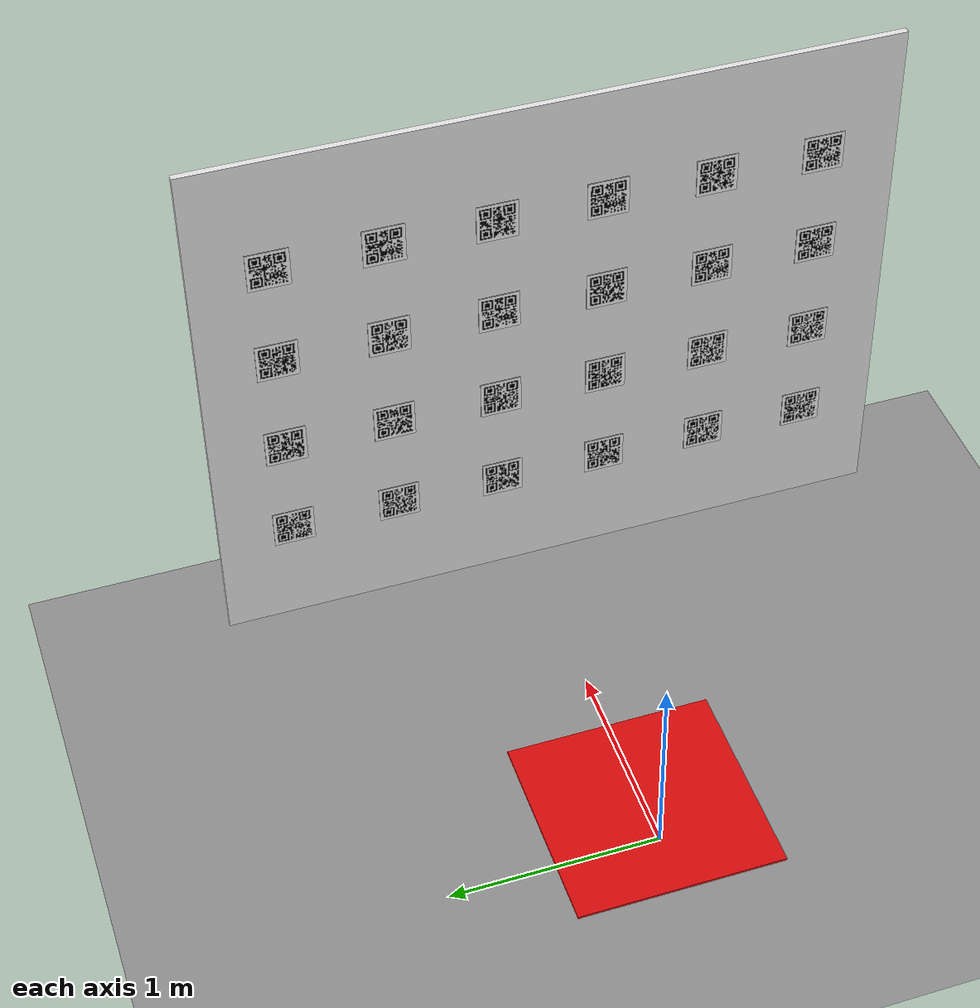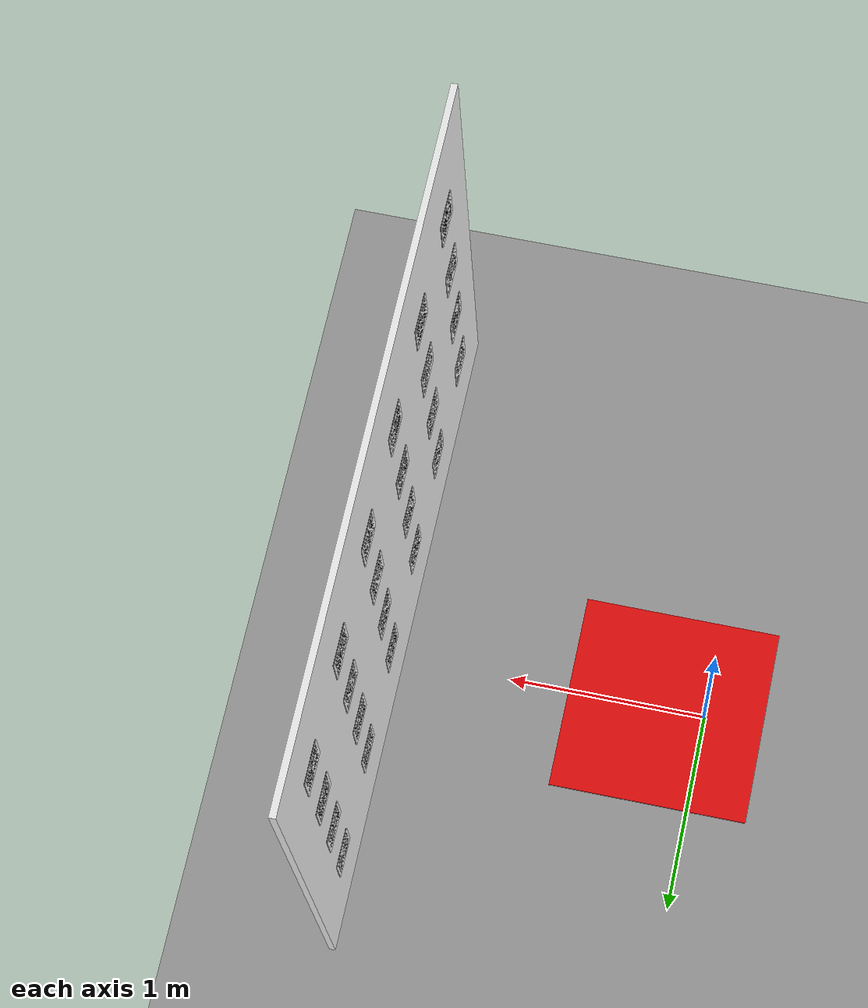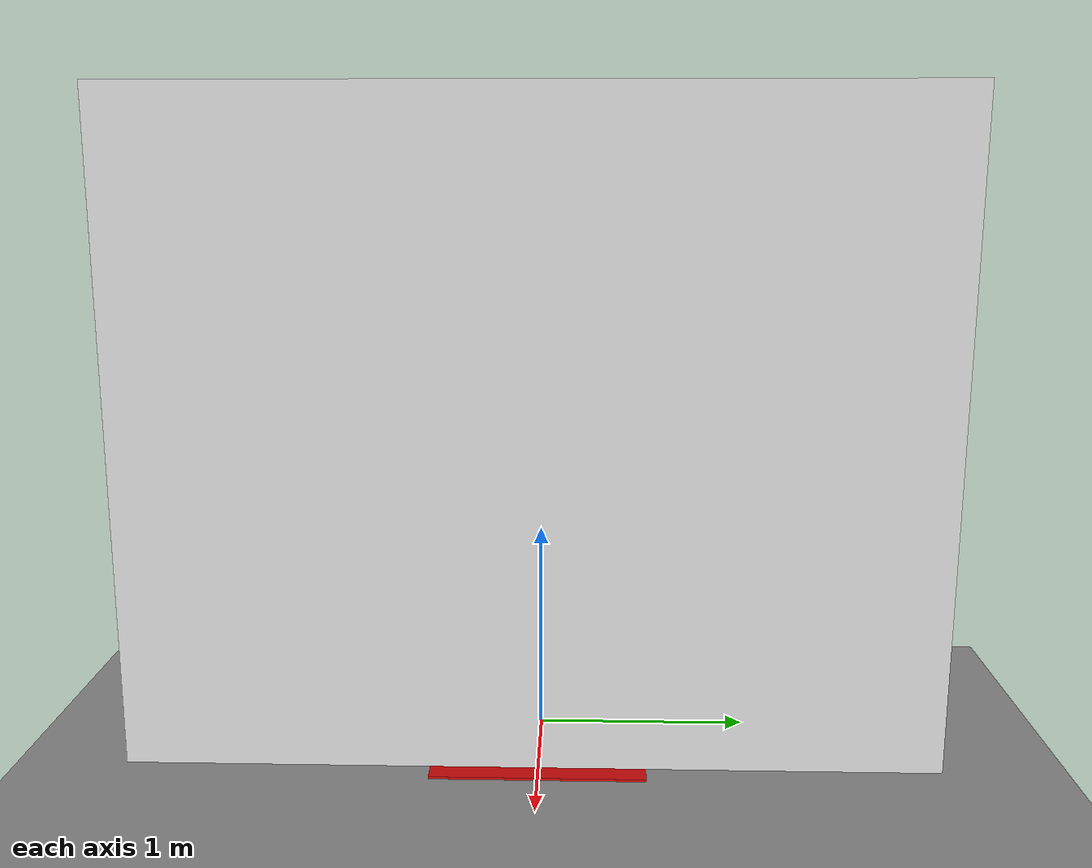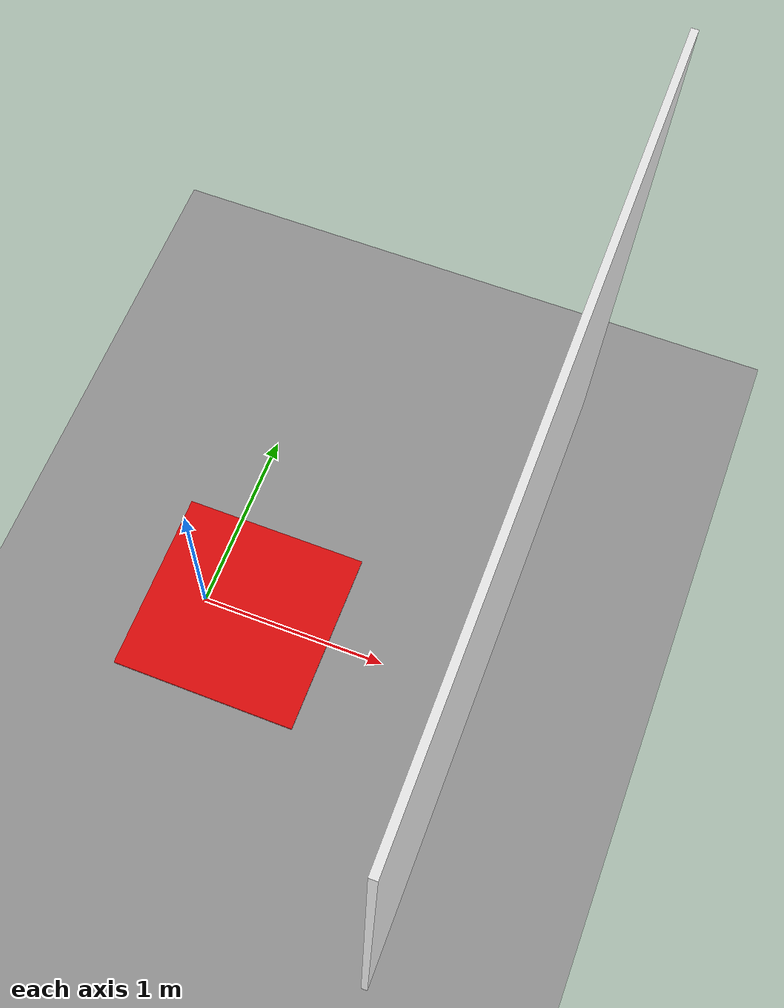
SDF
<?xml version="1.0"?>
<sdf version="1.9"><world name="qr_shelf_world">
  <physics type="ode"><max_step_size>0.004</max_step_size>
    <real_time_factor>1</real_time_factor></physics>
  <gravity>0 0 -9.8</gravity>
  <magnetic_field>6e-06 2.3e-05 -4.2e-05</magnetic_field>
  <atmosphere type="adiabatic"/>
  <scene><ambient>0.55 0.55 0.55 1</ambient>
    <background>0.75 0.75 0.75 1</background><shadows>true</shadows></scene>
  <model name="ground"><static>true</static><link name="link">
    <collision name="collision"><geometry><plane><normal>0 0 1</normal>
      <size>100 100</size></plane></geometry></collision>
    <visual name="visual"><geometry><plane><normal>0 0 1</normal>
      <size>100 100</size></plane></geometry><material>
      <diffuse>0.6 0.6 0.6 1</diffuse></material></visual></link></model>
  <include><uri>model://qr_shelf</uri><pose>1.5 0 0.25 0 0 0</pose></include>
  <model name="landing_pad"><static>true</static><pose>0.2 0 0.006 0 0 0</pose>
    <link name="link"><visual name="pad"><geometry>
      <box><size>1.0 1.0 0.012</size></box>
      </geometry><material><diffuse>0.9 0.05 0.05 1</diffuse>
      </material></visual></link></model>
  <model name="shelf_validation_camera"><static>true</static>
    <pose>-0.5 0 2.0 0 0 0</pose><link name="link">
      <sensor name="camera" type="camera">
        <topic>/camera/shelf_validation/image</topic>
        <camera><horizontal_fov>1.0471975512</horizontal_fov>
          <image><width>640</width><height>480</height>
            <format>R8G8B8</format></image>
          <clip><near>0.05</near><far>10</far></clip></camera>
        <always_on>true</always_on><update_rate>5</update_rate>
      </sensor>
    </link>
  </model>
  <light name="sun" type="directional"><pose>0 0 10 0 0 0</pose>
    <cast_shadows>true</cast_shadows><intensity>1</intensity>
    <direction>-0.3 0.2 -0.9</direction></light>
  <spherical_coordinates>
    <surface_model>EARTH_WGS84</surface_model>
    <world_frame_orientation>ENU</world_frame_orientation>
    <latitude_deg>47.397971057728974</latitude_deg>
    <longitude_deg>8.546163739800146</longitude_deg>
    <elevation>0</elevation>
  </spherical_coordinates>
</world></sdf>

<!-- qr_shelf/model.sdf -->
<sdf version="1.9"><model name="qr_shelf"><static>true</static>
  <link name="shelf">
    <visual name="white_back"><pose>0.015 0 1.5 0 0 0</pose>
      <geometry><box><size>0.03 3.2 2.6</size></box></geometry>
      <material><diffuse>0.95 0.95 0.95 1</diffuse></material></visual>
    <collision name="back_collision"><pose>0.03 0 1.5 0 0 0</pose>
      <geometry><box><size>0.06 3.2 2.6</size></box></geometry></collision>

        <visual name="qr_01_black">
          <pose>-0.002 -1.25 2.25 0 0 0</pose>
          <geometry><box><size>0.004 0.19 0.19</size></box></geometry>
          <material><ambient>0 0 0 1</ambient><diffuse>0 0 0 1</diffuse>
          <specular>0 0 0 1</specular></material>
        </visual>
        <visual name="qr_01_modules">
          <pose>-0.005 -1.25 2.25 0 0 0</pose>
          <geometry><mesh><uri>meshes/qr_01.dae</uri></mesh></geometry>
          <material><ambient>1 1 1 1</ambient><diffuse>1 1 1 1</diffuse>
          <specular>0 0 0 1</specular></material>
        </visual>
        <visual name="qr_02_black">
          <pose>-0.002 -0.75 2.25 0 0 0</pose>
          <geometry><box><size>0.004 0.19 0.19</size></box></geometry>
          <material><ambient>0 0 0 1</ambient><diffuse>0 0 0 1</diffuse>
          <specular>0 0 0 1</specular></material>
        </visual>
        <visual name="qr_02_modules">
          <pose>-0.005 -0.75 2.25 0 0 0</pose>
          <geometry><mesh><uri>meshes/qr_02.dae</uri></mesh></geometry>
          <material><ambient>1 1 1 1</ambient><diffuse>1 1 1 1</diffuse>
          <specular>0 0 0 1</specular></material>
        </visual>
        <visual name="qr_03_black">
          <pose>-0.002 -0.25 2.25 0 0 0</pose>
          <geometry><box><size>0.004 0.19 0.19</size></box></geometry>
          <material><ambient>0 0 0 1</ambient><diffuse>0 0 0 1</diffuse>
          <specular>0 0 0 1</specular></material>
        </visual>
        <visual name="qr_03_modules">
          <pose>-0.005 -0.25 2.25 0 0 0</pose>
          <geometry><mesh><uri>meshes/qr_03.dae</uri></mesh></geometry>
          <material><ambient>1 1 1 1</ambient><diffuse>1 1 1 1</diffuse>
          <specular>0 0 0 1</specular></material>
        </visual>
        <visual name="qr_04_black">
          <pose>-0.002 0.25 2.25 0 0 0</pose>
          <geometry><box><size>0.004 0.19 0.19</size></box></geometry>
          <material><ambient>0 0 0 1</ambient><diffuse>0 0 0 1</diffuse>
          <specular>0 0 0 1</specular></material>
        </visual>
        <visual name="qr_04_modules">
          <pose>-0.005 0.25 2.25 0 0 0</pose>
          <geometry><mesh><uri>meshes/qr_04.dae</uri></mesh></geometry>
          <material><ambient>1 1 1 1</ambient><diffuse>1 1 1 1</diffuse>
          <specular>0 0 0 1</specular></material>
        </visual>
        <visual name="qr_05_black">
          <pose>-0.002 0.75 2.25 0 0 0</pose>
          <geometry><box><size>0.004 0.19 0.19</size></box></geometry>
          <material><ambient>0 0 0 1</ambient><diffuse>0 0 0 1</diffuse>
          <specular>0 0 0 1</specular></material>
        </visual>
        <visual name="qr_05_modules">
          <pose>-0.005 0.75 2.25 0 0 0</pose>
          <geometry><mesh><uri>meshes/qr_05.dae</uri></mesh></geometry>
          <material><ambient>1 1 1 1</ambient><diffuse>1 1 1 1</diffuse>
          <specular>0 0 0 1</specular></material>
        </visual>
        <visual name="qr_06_black">
          <pose>-0.002 1.25 2.25 0 0 0</pose>
          <geometry><box><size>0.004 0.19 0.19</size></box></geometry>
          <material><ambient>0 0 0 1</ambient><diffuse>0 0 0 1</diffuse>
          <specular>0 0 0 1</specular></material>
        </visual>
        <visual name="qr_06_modules">
          <pose>-0.005 1.25 2.25 0 0 0</pose>
          <geometry><mesh><uri>meshes/qr_06.dae</uri></mesh></geometry>
          <material><ambient>1 1 1 1</ambient><diffuse>1 1 1 1</diffuse>
          <specular>0 0 0 1</specular></material>
        </visual>
        <visual name="qr_07_black">
          <pose>-0.002 -1.25 1.75 0 0 0</pose>
          <geometry><box><size>0.004 0.19 0.19</size></box></geometry>
          <material><ambient>0 0 0 1</ambient><diffuse>0 0 0 1</diffuse>
          <specular>0 0 0 1</specular></material>
        </visual>
        <visual name="qr_07_modules">
          <pose>-0.005 -1.25 1.75 0 0 0</pose>
          <geometry><mesh><uri>meshes/qr_07.dae</uri></mesh></geometry>
          <material><ambient>1 1 1 1</ambient><diffuse>1 1 1 1</diffuse>
          <specular>0 0 0 1</specular></material>
        </visual>
        <visual name="qr_08_black">
          <pose>-0.002 -0.75 1.75 0 0 0</pose>
          <geometry><box><size>0.004 0.19 0.19</size></box></geometry>
          <material><ambient>0 0 0 1</ambient><diffuse>0 0 0 1</diffuse>
          <specular>0 0 0 1</specular></material>
        </visual>
        <visual name="qr_08_modules">
          <pose>-0.005 -0.75 1.75 0 0 0</pose>
          <geometry><mesh><uri>meshes/qr_08.dae</uri></mesh></geometry>
          <material><ambient>1 1 1 1</ambient><diffuse>1 1 1 1</diffuse>
          <specular>0 0 0 1</specular></material>
        </visual>
        <visual name="qr_09_black">
          <pose>-0.002 -0.25 1.75 0 0 0</pose>
          <geometry><box><size>0.004 0.19 0.19</size></box></geometry>
          <material><ambient>0 0 0 1</ambient><diffuse>0 0 0 1</diffuse>
          <specular>0 0 0 1</specular></material>
        </visual>
        <visual name="qr_09_modules">
          <pose>-0.005 -0.25 1.75 0 0 0</pose>
          <geometry><mesh><uri>meshes/qr_09.dae</uri></mesh></geometry>
          <material><ambient>1 1 1 1</ambient><diffuse>1 1 1 1</diffuse>
          <specular>0 0 0 1</specular></material>
        </visual>
        <visual name="qr_10_black">
          <pose>-0.002 0.25 1.75 0 0 0</pose>
          <geometry><box><size>0.004 0.19 0.19</size></box></geometry>
          <material><ambient>0 0 0 1</ambient><diffuse>0 0 0 1</diffuse>
          <specular>0 0 0 1</specular></material>
        </visual>
        <visual name="qr_10_modules">
          <pose>-0.005 0.25 1.75 0 0 0</pose>
          <geometry><mesh><uri>meshes/qr_10.dae</uri></mesh></geometry>
          <material><ambient>1 1 1 1</ambient><diffuse>1 1 1 1</diffuse>
          <specular>0 0 0 1</specular></material>
        </visual>
        <visual name="qr_11_black">
          <pose>-0.002 0.75 1.75 0 0 0</pose>
          <geometry><box><size>0.004 0.19 0.19</size></box></geometry>
          <material><ambient>0 0 0 1</ambient><diffuse>0 0 0 1</diffuse>
          <specular>0 0 0 1</specular></material>
        </visual>
        <visual name="qr_11_modules">
          <pose>-0.005 0.75 1.75 0 0 0</pose>
          <geometry><mesh><uri>meshes/qr_11.dae</uri></mesh></geometry>
          <material><ambient>1 1 1 1</ambient><diffuse>1 1 1 1</diffuse>
          <specular>0 0 0 1</specular></material>
        </visual>
        <visual name="qr_12_black">
          <pose>-0.002 1.25 1.75 0 0 0</pose>
          <geometry><box><size>0.004 0.19 0.19</size></box></geometry>
          <material><ambient>0 0 0 1</ambient><diffuse>0 0 0 1</diffuse>
          <specular>0 0 0 1</specular></material>
        </visual>
        <visual name="qr_12_modules">
          <pose>-0.005 1.25 1.75 0 0 0</pose>
          <geometry><mesh><uri>meshes/qr_12.dae</uri></mesh></geometry>
          <material><ambient>1 1 1 1</ambient><diffuse>1 1 1 1</diffuse>
          <specular>0 0 0 1</specular></material>
        </visual>
        <visual name="qr_13_black">
          <pose>-0.002 -1.25 1.25 0 0 0</pose>
          <geometry><box><size>0.004 0.19 0.19</size></box></geometry>
          <material><ambient>0 0 0 1</ambient><diffuse>0 0 0 1</diffuse>
          <specular>0 0 0 1</specular></material>
        </visual>
        <visual name="qr_13_modules">
          <pose>-0.005 -1.25 1.25 0 0 0</pose>
          <geometry><mesh><uri>meshes/qr_13.dae</uri></mesh></geometry>
          <material><ambient>1 1 1 1</ambient><diffuse>1 1 1 1</diffuse>
          <specular>0 0 0 1</specular></material>
        </visual>
        <visual name="qr_14_black">
          <pose>-0.002 -0.75 1.25 0 0 0</pose>
          <geometry><box><size>0.004 0.19 0.19</size></box></geometry>
          <material><ambient>0 0 0 1</ambient><diffuse>0 0 0 1</diffuse>
          <specular>0 0 0 1</specular></material>
        </visual>
        <visual name="qr_14_modules">
          <pose>-0.005 -0.75 1.25 0 0 0</pose>
          <geometry><mesh><uri>meshes/qr_14.dae</uri></mesh></geometry>
          <material><ambient>1 1 1 1</ambient><diffuse>1 1 1 1</diffuse>
          <specular>0 0 0 1</specular></material>
        </visual>
        <visual name="qr_15_black">
          <pose>-0.002 -0.25 1.25 0 0 0</pose>
          <geometry><box><size>0.004 0.19 0.19</size></box></geometry>
          <material><ambient>0 0 0 1</ambient><diffuse>0 0 0 1</diffuse>
          <specular>0 0 0 1</specular></material>
        </visual>
        <visual name="qr_15_modules">
          <pose>-0.005 -0.25 1.25 0 0 0</pose>
          <geometry><mesh><uri>meshes/qr_15.dae</uri></mesh></geometry>
          <material><ambient>1 1 1 1</ambient><diffuse>1 1 1 1</diffuse>
          <specular>0 0 0 1</specular></material>
        </visual>
        <visual name="qr_16_black">
          <pose>-0.002 0.25 1.25 0 0 0</pose>
          <geometry><box><size>0.004 0.19 0.19</size></box></geometry>
          <material><ambient>0 0 0 1</ambient><diffuse>0 0 0 1</diffuse>
          <specular>0 0 0 1</specular></material>
        </visual>
        <visual name="qr_16_modules">
          <pose>-0.005 0.25 1.25 0 0 0</pose>
          <geometry><mesh><uri>meshes/qr_16.dae</uri></mesh></geometry>
          <material><ambient>1 1 1 1</ambient><diffuse>1 1 1 1</diffuse>
          <specular>0 0 0 1</specular></material>
        </visual>
        <visual name="qr_17_black">
          <pose>-0.002 0.75 1.25 0 0 0</pose>
          <geometry><box><size>0.004 0.19 0.19</size></box></geometry>
          <material><ambient>0 0 0 1</ambient><diffuse>0 0 0 1</diffuse>
          <specular>0 0 0 1</specular></material>
        </visual>
        <visual name="qr_17_modules">
          <pose>-0.005 0.75 1.25 0 0 0</pose>
          <geometry><mesh><uri>meshes/qr_17.dae</uri></mesh></geometry>
          <material><ambient>1 1 1 1</ambient><diffuse>1 1 1 1</diffuse>
          <specular>0 0 0 1</specular></material>
        </visual>
        <visual name="qr_18_black">
          <pose>-0.002 1.25 1.25 0 0 0</pose>
          <geometry><box><size>0.004 0.19 0.19</size></box></geometry>
          <material><ambient>0 0 0 1</ambient><diffuse>0 0 0 1</diffuse>
          <specular>0 0 0 1</specular></material>
        </visual>
        <visual name="qr_18_modules">
          <pose>-0.005 1.25 1.25 0 0 0</pose>
          <geometry><mesh><uri>meshes/qr_18.dae</uri></mesh></geometry>
          <material><ambient>1 1 1 1</ambient><diffuse>1 1 1 1</diffuse>
          <specular>0 0 0 1</specular></material>
        </visual>
        <visual name="qr_19_black">
          <pose>-0.002 -1.25 0.75 0 0 0</pose>
          <geometry><box><size>0.004 0.19 0.19</size></box></geometry>
          <material><ambient>0 0 0 1</ambient><diffuse>0 0 0 1</diffuse>
          <specular>0 0 0 1</specular></material>
        </visual>
        <visual name="qr_19_modules">
          <pose>-0.005 -1.25 0.75 0 0 0</pose>
          <geometry><mesh><uri>meshes/qr_19.dae</uri></mesh></geometry>
          <material><ambient>1 1 1 1</ambient><diffuse>1 1 1 1</diffuse>
          <specular>0 0 0 1</specular></material>
        </visual>
        <visual name="qr_20_black">
          <pose>-0.002 -0.75 0.75 0 0 0</pose>
          <geometry><box><size>0.004 0.19 0.19</size></box></geometry>
          <material><ambient>0 0 0 1</ambient><diffuse>0 0 0 1</diffuse>
          <specular>0 0 0 1</specular></material>
        </visual>
        <visual name="qr_20_modules">
          <pose>-0.005 -0.75 0.75 0 0 0</pose>
          <geometry><mesh><uri>meshes/qr_20.dae</uri></mesh></geometry>
          <material><ambient>1 1 1 1</ambient><diffuse>1 1 1 1</diffuse>
          <specular>0 0 0 1</specular></material>
        </visual>
        <visual name="qr_21_black">
          <pose>-0.002 -0.25 0.75 0 0 0</pose>
          <geometry><box><size>0.004 0.19 0.19</size></box></geometry>
          <material><ambient>0 0 0 1</ambient><diffuse>0 0 0 1</diffuse>
          <specular>0 0 0 1</specular></material>
        </visual>
        <visual name="qr_21_modules">
          <pose>-0.005 -0.25 0.75 0 0 0</pose>
          <geometry><mesh><uri>meshes/qr_21.dae</uri></mesh></geometry>
          <material><ambient>1 1 1 1</ambient><diffuse>1 1 1 1</diffuse>
          <specular>0 0 0 1</specular></material>
        </visual>
        <visual name="qr_22_black">
          <pose>-0.002 0.25 0.75 0 0 0</pose>
          <geometry><box><size>0.004 0.19 0.19</size></box></geometry>
          <material><ambient>0 0 0 1</ambient><diffuse>0 0 0 1</diffuse>
          <specular>0 0 0 1</specular></material>
        </visual>
        <visual name="qr_22_modules">
          <pose>-0.005 0.25 0.75 0 0 0</pose>
          <geometry><mesh><uri>meshes/qr_22.dae</uri></mesh></geometry>
          <material><ambient>1 1 1 1</ambient><diffuse>1 1 1 1</diffuse>
          <specular>0 0 0 1</specular></material>
        </visual>
        <visual name="qr_23_black">
          <pose>-0.002 0.75 0.75 0 0 0</pose>
          <geometry><box><size>0.004 0.19 0.19</size></box></geometry>
          <material><ambient>0 0 0 1</ambient><diffuse>0 0 0 1</diffuse>
          <specular>0 0 0 1</specular></material>
        </visual>
        <visual name="qr_23_modules">
          <pose>-0.005 0.75 0.75 0 0 0</pose>
          <geometry><mesh><uri>meshes/qr_23.dae</uri></mesh></geometry>
          <material><ambient>1 1 1 1</ambient><diffuse>1 1 1 1</diffuse>
          <specular>0 0 0 1</specular></material>
        </visual>
        <visual name="qr_24_black">
          <pose>-0.002 1.25 0.75 0 0 0</pose>
          <geometry><box><size>0.004 0.19 0.19</size></box></geometry>
          <material><ambient>0 0 0 1</ambient><diffuse>0 0 0 1</diffuse>
          <specular>0 0 0 1</specular></material>
        </visual>
        <visual name="qr_24_modules">
          <pose>-0.005 1.25 0.75 0 0 0</pose>
          <geometry><mesh><uri>meshes/qr_24.dae</uri></mesh></geometry>
          <material><ambient>1 1 1 1</ambient><diffuse>1 1 1 1</diffuse>
          <specular>0 0 0 1</specular></material>
        </visual>
  </link>
</model></sdf>
